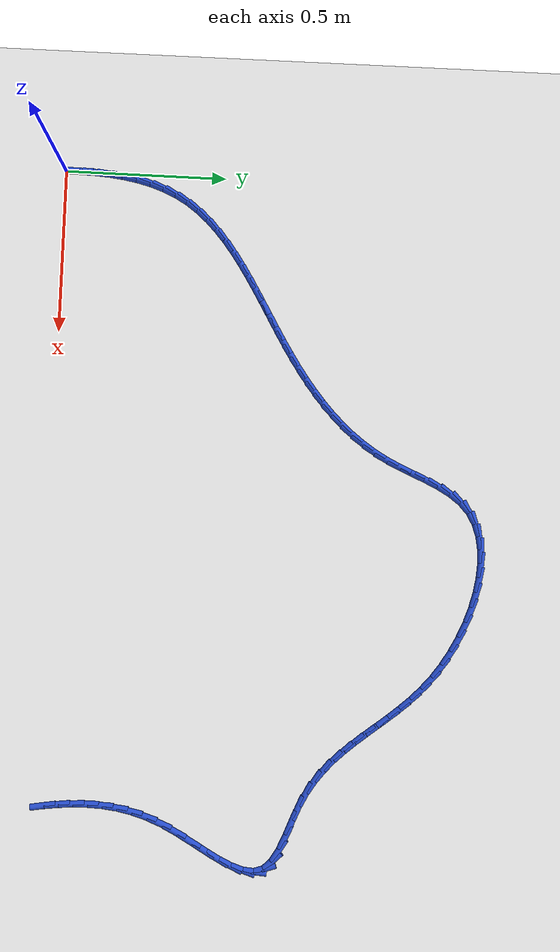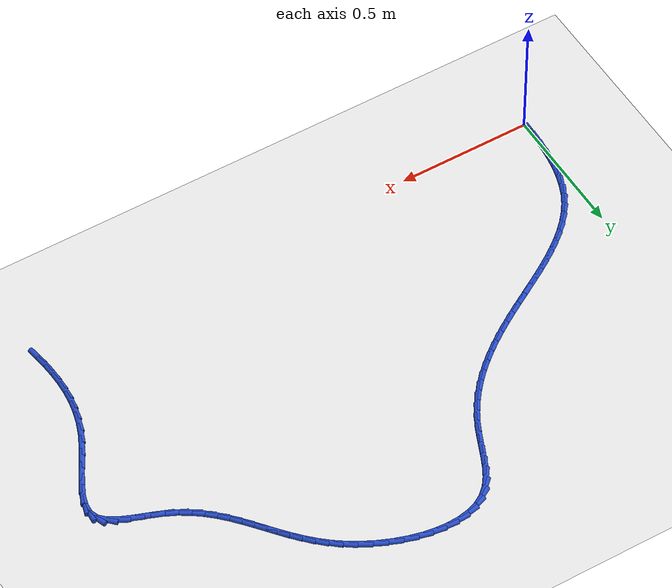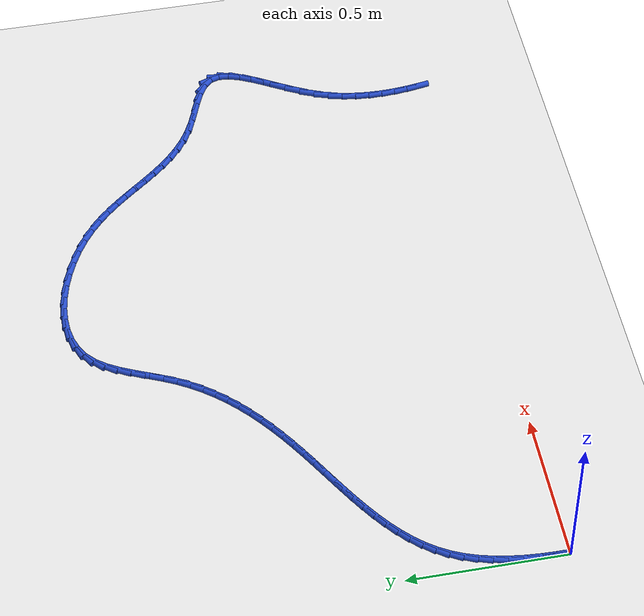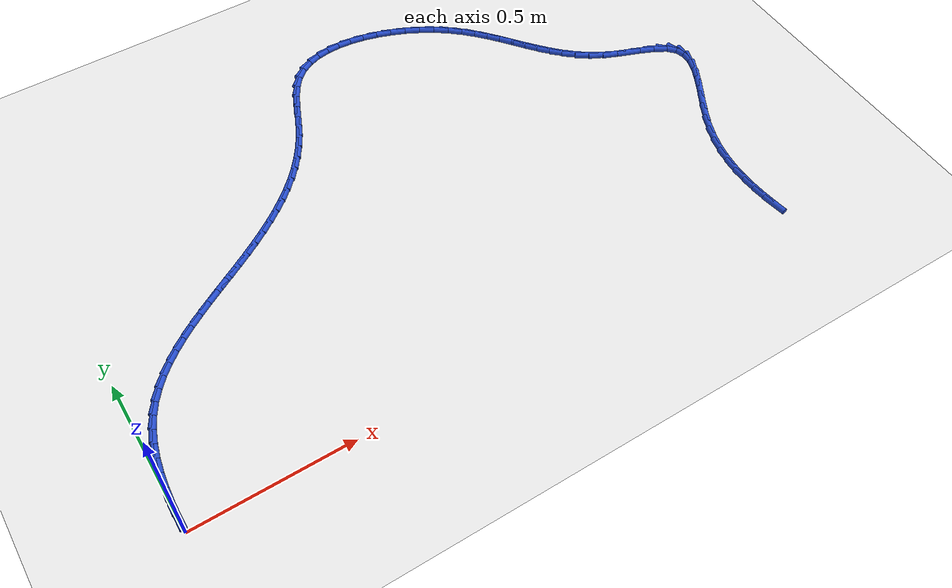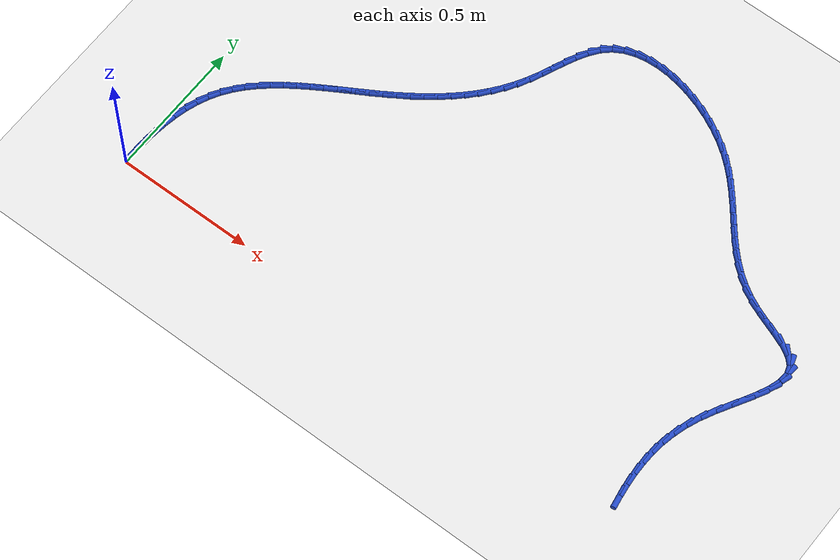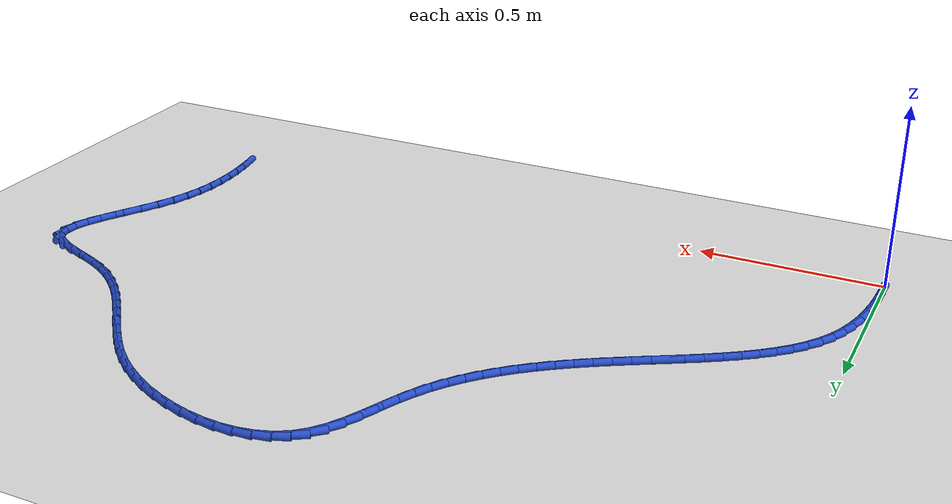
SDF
<sdf version="1.6">
 <world name="default">
  <model name="ground_plane">
   <static>1</static>
   <link name="link">
    <collision name="collision">
     <geometry><plane><normal>0 0 1</normal><size>100 100</size></plane></geometry>
     <surface><friction><ode><mu>100</mu><mu2>50</mu2></ode></friction></surface>
    </collision>
    <visual name="visual">
     <cast_shadows>0</cast_shadows>
     <geometry><plane><normal>0 0 1</normal><size>100 100</size></plane></geometry>
     <material>
      <script><uri>file://media/materials/scripts/gazebo.material</uri><name>Gazebo/WhiteGlow</name></script>
     </material>
    </visual>
   </link>
  </model>
  <model name="line">
   <link name="link_1">
    <pose>-5.461354444209526e-05 0.04609418921178743 0.01 0 1.57 1.5378651562185328</pose>
    <collision name="collision">
     <geometry><cylinder><radius>0.01</radius><length>0.08</length></cylinder></geometry>
    </collision>
    <visual name="visual">
     <material>
      <script><name>Gazebo/Blue</name><uri>file://media/materials/scripts/gazebo.material</uri></script>
     </material>
     <geometry><cylinder><radius>0.01</radius><length>0.08</length></cylinder></geometry>
    </visual>
   </link>
   <link name="link_2">
    <pose>0.001460553691353006 0.09208767975349447 0.01 0 1.57 1.496667337225599</pose>
    <collision name="collision">
     <geometry><cylinder><radius>0.01</radius><length>0.08</length></cylinder></geometry>
    </collision>
    <visual name="visual">
     <material>
      <script><name>Gazebo/Blue</name><uri>file://media/materials/scripts/gazebo.material</uri></script>
     </material>
     <geometry><cylinder><radius>0.01</radius><length>0.08</length></cylinder></geometry>
    </visual>
   </link>
   <link name="link_3">
    <pose>0.004844474672389647 0.13765312442916 0.01 0 1.57 1.4475315382193203</pose>
    <collision name="collision">
     <geometry><cylinder><radius>0.01</radius><length>0.08</length></cylinder></geometry>
    </collision>
    <visual name="visual">
     <material>
      <script><name>Gazebo/Blue</name><uri>file://media/materials/scripts/gazebo.material</uri></script>
     </material>
     <geometry><cylinder><radius>0.01</radius><length>0.08</length></cylinder></geometry>
    </visual>
   </link>
   <link name="link_4">
    <pose>0.010396122363672163 0.1824631760428229 0.01 0 1.57 1.3894395232690393</pose>
    <collision name="collision">
     <geometry><cylinder><radius>0.01</radius><length>0.08</length></cylinder></geometry>
    </collision>
    <visual name="visual">
     <material>
      <script><name>Gazebo/Blue</name><uri>file://media/materials/scripts/gazebo.material</uri></script>
     </material>
     <geometry><cylinder><radius>0.01</radius><length>0.08</length></cylinder></geometry>
    </visual>
   </link>
   <link name="link_5">
    <pose>0.018414469730204885 0.2261904873985221 0.01 0 1.57 1.3212698312868223</pose>
    <collision name="collision">
     <geometry><cylinder><radius>0.01</radius><length>0.08</length></cylinder></geometry>
    </collision>
    <visual name="visual">
     <material>
      <script><name>Gazebo/Blue</name><uri>file://media/materials/scripts/gazebo.material</uri></script>
     </material>
     <geometry><cylinder><radius>0.01</radius><length>0.08</length></cylinder></geometry>
    </visual>
   </link>
   <link name="link_6">
    <pose>0.029198489736992145 0.2685077113002964 0.01 0 1.57 1.241919839483153</pose>
    <collision name="collision">
     <geometry><cylinder><radius>0.01</radius><length>0.08</length></cylinder></geometry>
    </collision>
    <visual name="visual">
     <material>
      <script><name>Gazebo/Blue</name><uri>file://media/materials/scripts/gazebo.material</uri></script>
     </material>
     <geometry><cylinder><radius>0.01</radius><length>0.08</length></cylinder></geometry>
    </visual>
   </link>
   <link name="link_7">
    <pose>0.043047155349038274 0.3090875005521847 0.01 0 1.57 1.1505249234120345</pose>
    <collision name="collision">
     <geometry><cylinder><radius>0.01</radius><length>0.08</length></cylinder></geometry>
    </collision>
    <visual name="visual">
     <material>
      <script><name>Gazebo/Blue</name><uri>file://media/materials/scripts/gazebo.material</uri></script>
     </material>
     <geometry><cylinder><radius>0.01</radius><length>0.08</length></cylinder></geometry>
    </visual>
   </link>
   <link name="link_8">
    <pose>0.06025943953134761 0.3476025079582259 0.01 0 1.57 1.047654850337171</pose>
    <collision name="collision">
     <geometry><cylinder><radius>0.01</radius><length>0.08</length></cylinder></geometry>
    </collision>
    <visual name="visual">
     <material>
      <script><name>Gazebo/Blue</name><uri>file://media/materials/scripts/gazebo.material</uri></script>
     </material>
     <geometry><cylinder><radius>0.01</radius><length>0.08</length></cylinder></geometry>
    </visual>
   </link>
   <link name="link_9">
    <pose>0.08110669816775862 0.3837491830798641 0.01 0 1.57 0.9456619193685916</pose>
    <collision name="collision">
     <geometry><cylinder><radius>0.01</radius><length>0.08</length></cylinder></geometry>
    </collision>
    <visual name="visual">
     <material>
      <script><name>Gazebo/Blue</name><uri>file://media/materials/scripts/gazebo.material</uri></script>
     </material>
     <geometry><cylinder><radius>0.01</radius><length>0.08</length></cylinder></geometry>
    </visual>
   </link>
   <link name="link_10">
    <pose>0.10549329707692662 0.4175401991047393 0.01 0 1.57 0.8545430566858977</pose>
    <collision name="collision">
     <geometry><cylinder><radius>0.01</radius><length>0.08</length></cylinder></geometry>
    </collision>
    <visual name="visual">
     <material>
      <script><name>Gazebo/Blue</name><uri>file://media/materials/scripts/gazebo.material</uri></script>
     </material>
     <geometry><cylinder><radius>0.01</radius><length>0.08</length></cylinder></geometry>
    </visual>
   </link>
   <link name="link_11">
    <pose>0.13306302004227455 0.44921276444343244 0.01 0 1.57 0.7755130728796676</pose>
    <collision name="collision">
     <geometry><cylinder><radius>0.01</radius><length>0.08</length></cylinder></geometry>
    </collision>
    <visual name="visual">
     <material>
      <script><name>Gazebo/Blue</name><uri>file://media/materials/scripts/gazebo.material</uri></script>
     </material>
     <geometry><cylinder><radius>0.01</radius><length>0.08</length></cylinder></geometry>
    </visual>
   </link>
   <link name="link_12">
    <pose>0.16345410067431382 0.47900886991338126 0.01 0 1.57 0.7086950156455445</pose>
    <collision name="collision">
     <geometry><cylinder><radius>0.01</radius><length>0.08</length></cylinder></geometry>
    </collision>
    <visual name="visual">
     <material>
      <script><name>Gazebo/Blue</name><uri>file://media/materials/scripts/gazebo.material</uri></script>
     </material>
     <geometry><cylinder><radius>0.01</radius><length>0.08</length></cylinder></geometry>
    </visual>
   </link>
   <link name="link_13">
    <pose>0.19630477258355566 0.5071705063320233 0.01 0 1.57 0.653637642707787</pose>
    <collision name="collision">
     <geometry><cylinder><radius>0.01</radius><length>0.08</length></cylinder></geometry>
    </collision>
    <visual name="visual">
     <material>
      <script><name>Gazebo/Blue</name><uri>file://media/materials/scripts/gazebo.material</uri></script>
     </material>
     <geometry><cylinder><radius>0.01</radius><length>0.08</length></cylinder></geometry>
    </visual>
   </link>
   <link name="link_14">
    <pose>0.23125326938051127 0.533939664516796 0.01 0 1.57 0.6096179353655401</pose>
    <collision name="collision">
     <geometry><cylinder><radius>0.01</radius><length>0.08</length></cylinder></geometry>
    </collision>
    <visual name="visual">
     <material>
      <script><name>Gazebo/Blue</name><uri>file://media/materials/scripts/gazebo.material</uri></script>
     </material>
     <geometry><cylinder><radius>0.01</radius><length>0.08</length></cylinder></geometry>
    </visual>
   </link>
   <link name="link_15">
    <pose>0.26793782467569227 0.5595583352851373 0.01 0 1.57 0.5758564400715441</pose>
    <collision name="collision">
     <geometry><cylinder><radius>0.01</radius><length>0.08</length></cylinder></geometry>
    </collision>
    <visual name="visual">
     <material>
      <script><name>Gazebo/Blue</name><uri>file://media/materials/scripts/gazebo.material</uri></script>
     </material>
     <geometry><cylinder><radius>0.01</radius><length>0.08</length></cylinder></geometry>
    </visual>
   </link>
   <link name="link_16">
    <pose>0.30599667207960984 0.5842685094544845 0.01 0 1.57 0.5516502759008736</pose>
    <collision name="collision">
     <geometry><cylinder><radius>0.01</radius><length>0.08</length></cylinder></geometry>
    </collision>
    <visual name="visual">
     <material>
      <script><name>Gazebo/Blue</name><uri>file://media/materials/scripts/gazebo.material</uri></script>
     </material>
     <geometry><cylinder><radius>0.01</radius><length>0.08</length></cylinder></geometry>
    </visual>
   </link>
   <link name="link_17">
    <pose>0.3450680452027752 0.6083121778422756 0.01 0 1.57 0.536446397267386</pose>
    <collision name="collision">
     <geometry><cylinder><radius>0.01</radius><length>0.08</length></cylinder></geometry>
    </collision>
    <visual name="visual">
     <material>
      <script><name>Gazebo/Blue</name><uri>file://media/materials/scripts/gazebo.material</uri></script>
     </material>
     <geometry><cylinder><radius>0.01</radius><length>0.08</length></cylinder></geometry>
    </visual>
   </link>
   <link name="link_18">
    <pose>0.38479017765569967 0.6319313312659477 0.01 0 1.57 0.5298777556419644</pose>
    <collision name="collision">
     <geometry><cylinder><radius>0.01</radius><length>0.08</length></cylinder></geometry>
    </collision>
    <visual name="visual">
     <material>
      <script><name>Gazebo/Blue</name><uri>file://media/materials/scripts/gazebo.material</uri></script>
     </material>
     <geometry><cylinder><radius>0.01</radius><length>0.08</length></cylinder></geometry>
    </visual>
   </link>
   <link name="link_19">
    <pose>0.42480130304889463 0.6553679605429387 0.01 0 1.57 0.5317788992559888</pose>
    <collision name="collision">
     <geometry><cylinder><radius>0.01</radius><length>0.08</length></cylinder></geometry>
    </collision>
    <visual name="visual">
     <material>
      <script><name>Gazebo/Blue</name><uri>file://media/materials/scripts/gazebo.material</uri></script>
     </material>
     <geometry><cylinder><radius>0.01</radius><length>0.08</length></cylinder></geometry>
    </visual>
   </link>
   <link name="link_20">
    <pose>0.4647396549928715 0.6788640564906863 0.01 0 1.57 0.5421908264301276</pose>
    <collision name="collision">
     <geometry><cylinder><radius>0.01</radius><length>0.08</length></cylinder></geometry>
    </collision>
    <visual name="visual">
     <material>
      <script><name>Gazebo/Blue</name><uri>file://media/materials/scripts/gazebo.material</uri></script>
     </material>
     <geometry><cylinder><radius>0.01</radius><length>0.08</length></cylinder></geometry>
    </visual>
   </link>
   <link name="link_21">
    <pose>0.5042434670981417 0.7026616099266283 0.01 0 1.57 0.5609635225614444</pose>
    <collision name="collision">
     <geometry><cylinder><radius>0.01</radius><length>0.08</length></cylinder></geometry>
    </collision>
    <visual name="visual">
     <material>
      <script><name>Gazebo/Blue</name><uri>file://media/materials/scripts/gazebo.material</uri></script>
     </material>
     <geometry><cylinder><radius>0.01</radius><length>0.08</length></cylinder></geometry>
    </visual>
   </link>
   <link name="link_22">
    <pose>0.5429727379642396 0.7269949241003821 0.01 0 1.57 0.5858534026313756</pose>
    <collision name="collision">
     <geometry><cylinder><radius>0.01</radius><length>0.08</length></cylinder></geometry>
    </collision>
    <visual name="visual">
     <material>
      <script><name>Gazebo/Blue</name><uri>file://media/materials/scripts/gazebo.material</uri></script>
     </material>
     <geometry><cylinder><radius>0.01</radius><length>0.08</length></cylinder></geometry>
    </visual>
   </link>
   <link name="link_23">
    <pose>0.5807285957842947 0.7520484541628164 0.01 0 1.57 0.6160258993603437</pose>
    <collision name="collision">
     <geometry><cylinder><radius>0.01</radius><length>0.08</length></cylinder></geometry>
    </collision>
    <visual name="visual">
     <material>
      <script><name>Gazebo/Blue</name><uri>file://media/materials/scripts/gazebo.material</uri></script>
     </material>
     <geometry><cylinder><radius>0.01</radius><length>0.08</length></cylinder></geometry>
    </visual>
   </link>
   <link name="link_24">
    <pose>0.617368452465538 0.7779867754078025 0.01 0 1.57 0.6516195660069333</pose>
    <collision name="collision">
     <geometry><cylinder><radius>0.01</radius><length>0.08</length></cylinder></geometry>
    </collision>
    <visual name="visual">
     <material>
      <script><name>Gazebo/Blue</name><uri>file://media/materials/scripts/gazebo.material</uri></script>
     </material>
     <geometry><cylinder><radius>0.01</radius><length>0.08</length></cylinder></geometry>
    </visual>
   </link>
   <link name="link_25">
    <pose>0.6527498660742618 0.8049744115046663 0.01 0 1.57 0.69272663981271</pose>
    <collision name="collision">
     <geometry><cylinder><radius>0.01</radius><length>0.08</length></cylinder></geometry>
    </collision>
    <visual name="visual">
     <material>
      <script><name>Gazebo/Blue</name><uri>file://media/materials/scripts/gazebo.material</uri></script>
     </material>
     <geometry><cylinder><radius>0.01</radius><length>0.08</length></cylinder></geometry>
    </visual>
   </link>
   <link name="link_26">
    <pose>0.6867303946767578 0.8331758861227329 0.01 0 1.57 0.7393568556690804</pose>
    <collision name="collision">
     <geometry><cylinder><radius>0.01</radius><length>0.08</length></cylinder></geometry>
    </collision>
    <visual name="visual">
     <material>
      <script><name>Gazebo/Blue</name><uri>file://media/materials/scripts/gazebo.material</uri></script>
     </material>
     <geometry><cylinder><radius>0.01</radius><length>0.08</length></cylinder></geometry>
    </visual>
   </link>
   <link name="link_27">
    <pose>0.7191675963393177 0.8627557229313279 0.01 0 1.57 0.7913988177955018</pose>
    <collision name="collision">
     <geometry><cylinder><radius>0.01</radius><length>0.08</length></cylinder></geometry>
    </collision>
    <visual name="visual">
     <material>
      <script><name>Gazebo/Blue</name><uri>file://media/materials/scripts/gazebo.material</uri></script>
     </material>
     <geometry><cylinder><radius>0.01</radius><length>0.08</length></cylinder></geometry>
    </visual>
   </link>
   <link name="link_28">
    <pose>0.7499190291282343 0.8938784455997767 0.01 0 1.57 0.8485803193854166</pose>
    <collision name="collision">
     <geometry><cylinder><radius>0.01</radius><length>0.08</length></cylinder></geometry>
    </collision>
    <visual name="visual">
     <material>
      <script><name>Gazebo/Blue</name><uri>file://media/materials/scripts/gazebo.material</uri></script>
     </material>
     <geometry><cylinder><radius>0.01</radius><length>0.08</length></cylinder></geometry>
    </visual>
   </link>
   <link name="link_29">
    <pose>0.7788422511097985 0.9267085777974045 0.01 0 1.57 0.9104344827017881</pose>
    <collision name="collision">
     <geometry><cylinder><radius>0.01</radius><length>0.08</length></cylinder></geometry>
    </collision>
    <visual name="visual">
     <material>
      <script><name>Gazebo/Blue</name><uri>file://media/materials/scripts/gazebo.material</uri></script>
     </material>
     <geometry><cylinder><radius>0.01</radius><length>0.08</length></cylinder></geometry>
    </visual>
   </link>
   <link name="link_30">
    <pose>0.805794820350303 0.9614106431935366 0.01 0 1.57 0.9762809017210619</pose>
    <collision name="collision">
     <geometry><cylinder><radius>0.01</radius><length>0.08</length></cylinder></geometry>
    </collision>
    <visual name="visual">
     <material>
      <script><name>Gazebo/Blue</name><uri>file://media/materials/scripts/gazebo.material</uri></script>
     </material>
     <geometry><cylinder><radius>0.01</radius><length>0.08</length></cylinder></geometry>
    </visual>
   </link>
   <link name="link_31">
    <pose>0.8306342949160396 0.9981491654574988 0.01 0 1.57 1.045231243875748</pose>
    <collision name="collision">
     <geometry><cylinder><radius>0.01</radius><length>0.08</length></cylinder></geometry>
    </collision>
    <visual name="visual">
     <material>
      <script><name>Gazebo/Blue</name><uri>file://media/materials/scripts/gazebo.material</uri></script>
     </material>
     <geometry><cylinder><radius>0.01</radius><length>0.08</length></cylinder></geometry>
    </visual>
   </link>
   <link name="link_32">
    <pose>0.8532182328733002 1.0370886682586165 0.01 0 1.57 1.1138030286405831</pose>
    <collision name="collision">
     <geometry><cylinder><radius>0.01</radius><length>0.08</length></cylinder></geometry>
    </collision>
    <visual name="visual">
     <material>
      <script><name>Gazebo/Blue</name><uri>file://media/materials/scripts/gazebo.material</uri></script>
     </material>
     <geometry><cylinder><radius>0.01</radius><length>0.08</length></cylinder></geometry>
    </visual>
   </link>
   <link name="link_33">
    <pose>0.8734820525060996 1.078299620335481 0.01 0 1.57 1.1571150702648454</pose>
    <collision name="collision">
     <geometry><cylinder><radius>0.01</radius><length>0.08</length></cylinder></geometry>
    </collision>
    <visual name="visual">
     <material>
      <script><name>Gazebo/Blue</name><uri>file://media/materials/scripts/gazebo.material</uri></script>
     </material>
     <geometry><cylinder><radius>0.01</radius><length>0.08</length></cylinder></geometry>
    </visual>
   </link>
   <link name="link_34">
    <pose>0.8921722653160781 1.1208726920311354 0.01 0 1.57 1.1628281830712808</pose>
    <collision name="collision">
     <geometry><cylinder><radius>0.01</radius><length>0.08</length></cylinder></geometry>
    </collision>
    <visual name="visual">
     <material>
      <script><name>Gazebo/Blue</name><uri>file://media/materials/scripts/gazebo.material</uri></script>
     </material>
     <geometry><cylinder><radius>0.01</radius><length>0.08</length></cylinder></geometry>
    </visual>
   </link>
   <link name="link_35">
    <pose>0.9105172241950978 1.1633164906029123 0.01 0 1.57 1.1304093988465822</pose>
    <collision name="collision">
     <geometry><cylinder><radius>0.01</radius><length>0.08</length></cylinder></geometry>
    </collision>
    <visual name="visual">
     <material>
      <script><name>Gazebo/Blue</name><uri>file://media/materials/scripts/gazebo.material</uri></script>
     </material>
     <geometry><cylinder><radius>0.01</radius><length>0.08</length></cylinder></geometry>
    </visual>
   </link>
   <link name="link_36">
    <pose>0.92975164044362 1.2041319423678944 0.01 0 1.57 1.0552064715295566</pose>
    <collision name="collision">
     <geometry><cylinder><radius>0.01</radius><length>0.08</length></cylinder></geometry>
    </collision>
    <visual name="visual">
     <material>
      <script><name>Gazebo/Blue</name><uri>file://media/materials/scripts/gazebo.material</uri></script>
     </material>
     <geometry><cylinder><radius>0.01</radius><length>0.08</length></cylinder></geometry>
    </visual>
   </link>
   <link name="link_37">
    <pose>0.951110225362104 1.2418199736431639 0.01 0 1.57 0.9288201876240286</pose>
    <collision name="collision">
     <geometry><cylinder><radius>0.01</radius><length>0.08</length></cylinder></geometry>
    </collision>
    <visual name="visual">
     <material>
      <script><name>Gazebo/Blue</name><uri>file://media/materials/scripts/gazebo.material</uri></script>
     </material>
     <geometry><cylinder><radius>0.01</radius><length>0.08</length></cylinder></geometry>
    </visual>
   </link>
   <link name="link_38">
    <pose>0.9758276902510103 1.2748815107458031 0.01 0 1.57 0.7437885615825935</pose>
    <collision name="collision">
     <geometry><cylinder><radius>0.01</radius><length>0.08</length></cylinder></geometry>
    </collision>
    <visual name="visual">
     <material>
      <script><name>Gazebo/Blue</name><uri>file://media/materials/scripts/gazebo.material</uri></script>
     </material>
     <geometry><cylinder><radius>0.01</radius><length>0.08</length></cylinder></geometry>
    </visual>
   </link>
   <link name="link_39">
    <pose>1.005121657326347 1.3018337441971113 0.01 0 1.57 0.5305552201940364</pose>
    <collision name="collision">
     <geometry><cylinder><radius>0.01</radius><length>0.08</length></cylinder></geometry>
    </collision>
    <visual name="visual">
     <material>
      <script><name>Gazebo/Blue</name><uri>file://media/materials/scripts/gazebo.material</uri></script>
     </material>
     <geometry><cylinder><radius>0.01</radius><length>0.08</length></cylinder></geometry>
    </visual>
   </link>
   <link name="link_40">
    <pose>1.0394136147600852 1.3219515696320194 0.01 0 1.57 0.3393083787846759</pose>
    <collision name="collision">
     <geometry><cylinder><radius>0.01</radius><length>0.08</length></cylinder></geometry>
    </collision>
    <visual name="visual">
     <material>
      <script><name>Gazebo/Blue</name><uri>file://media/materials/scripts/gazebo.material</uri></script>
     </material>
     <geometry><cylinder><radius>0.01</radius><length>0.08</length></cylinder></geometry>
    </visual>
   </link>
   <link name="link_41">
    <pose>1.0780073963664025 1.335573588513033 0.01 0 1.57 0.17725714844688686</pose>
    <collision name="collision">
     <geometry><cylinder><radius>0.01</radius><length>0.08</length></cylinder></geometry>
    </collision>
    <visual name="visual">
     <material>
      <script><name>Gazebo/Blue</name><uri>file://media/materials/scripts/gazebo.material</uri></script>
     </material>
     <geometry><cylinder><radius>0.01</radius><length>0.08</length></cylinder></geometry>
    </visual>
   </link>
   <link name="link_42">
    <pose>1.1201231142382877 1.3431180828247264 0.01 0 1.57 0.04200260265851956</pose>
    <collision name="collision">
     <geometry><cylinder><radius>0.01</radius><length>0.08</length></cylinder></geometry>
    </collision>
    <visual name="visual">
     <material>
      <script><name>Gazebo/Blue</name><uri>file://media/materials/scripts/gazebo.material</uri></script>
     </material>
     <geometry><cylinder><radius>0.01</radius><length>0.08</length></cylinder></geometry>
    </visual>
   </link>
   <link name="link_43">
    <pose>1.1649808804687278 1.3450033345516759 0.01 0 1.57 -0.07155031408301973</pose>
    <collision name="collision">
     <geometry><cylinder><radius>0.01</radius><length>0.08</length></cylinder></geometry>
    </collision>
    <visual name="visual">
     <material>
      <script><name>Gazebo/Blue</name><uri>file://media/materials/scripts/gazebo.material</uri></script>
     </material>
     <geometry><cylinder><radius>0.01</radius><length>0.08</length></cylinder></geometry>
    </visual>
   </link>
   <link name="link_44">
    <pose>1.2118008071507123 1.3416476256784562 0.01 0 1.57 -0.16875486050029517</pose>
    <collision name="collision">
     <geometry><cylinder><radius>0.01</radius><length>0.08</length></cylinder></geometry>
    </collision>
    <visual name="visual">
     <material>
      <script><name>Gazebo/Blue</name><uri>file://media/materials/scripts/gazebo.material</uri></script>
     </material>
     <geometry><cylinder><radius>0.01</radius><length>0.08</length></cylinder></geometry>
    </visual>
   </link>
   <link name="link_45">
    <pose>1.2598030063772294 1.3334692381896442 0.01 0 1.57 -0.25432146671569417</pose>
    <collision name="collision">
     <geometry><cylinder><radius>0.01</radius><length>0.08</length></cylinder></geometry>
    </collision>
    <visual name="visual">
     <material>
      <script><name>Gazebo/Blue</name><uri>file://media/materials/scripts/gazebo.material</uri></script>
     </material>
     <geometry><cylinder><radius>0.01</radius><length>0.08</length></cylinder></geometry>
    </visual>
   </link>
   <link name="link_46">
    <pose>1.308207590241266 1.3208864540698144 0.01 0 1.57 -0.33220528853665615</pose>
    <collision name="collision">
     <geometry><cylinder><radius>0.01</radius><length>0.08</length></cylinder></geometry>
    </collision>
    <visual name="visual">
     <material>
      <script><name>Gazebo/Blue</name><uri>file://media/materials/scripts/gazebo.material</uri></script>
     </material>
     <geometry><cylinder><radius>0.01</radius><length>0.08</length></cylinder></geometry>
    </visual>
   </link>
   <link name="link_47">
    <pose>1.356234670835812 1.3043175553035422 0.01 0 1.57 -0.40578767669279425</pose>
    <collision name="collision">
     <geometry><cylinder><radius>0.01</radius><length>0.08</length></cylinder></geometry>
    </collision>
    <visual name="visual">
     <material>
      <script><name>Gazebo/Blue</name><uri>file://media/materials/scripts/gazebo.material</uri></script>
     </material>
     <geometry><cylinder><radius>0.01</radius><length>0.08</length></cylinder></geometry>
    </visual>
   </link>
   <link name="link_48">
    <pose>1.4031043602538542 1.2841808238754042 0.01 0 1.57 -0.4781418470452831</pose>
    <collision name="collision">
     <geometry><cylinder><radius>0.01</radius><length>0.08</length></cylinder></geometry>
    </collision>
    <visual name="visual">
     <material>
      <script><name>Gazebo/Blue</name><uri>file://media/materials/scripts/gazebo.material</uri></script>
     </material>
     <geometry><cylinder><radius>0.01</radius><length>0.08</length></cylinder></geometry>
    </visual>
   </link>
   <link name="link_49">
    <pose>1.4480367705883816 1.2608945417699748 0.01 0 1.57 -0.5523237469019905</pose>
    <collision name="collision">
     <geometry><cylinder><radius>0.01</radius><length>0.08</length></cylinder></geometry>
    </collision>
    <visual name="visual">
     <material>
      <script><name>Gazebo/Blue</name><uri>file://media/materials/scripts/gazebo.material</uri></script>
     </material>
     <geometry><cylinder><radius>0.01</radius><length>0.08</length></cylinder></geometry>
    </visual>
   </link>
   <link name="link_50">
    <pose>1.4902520139323825 1.2348769909718302 0.01 0 1.57 -0.6314818254677969</pose>
    <collision name="collision">
     <geometry><cylinder><radius>0.01</radius><length>0.08</length></cylinder></geometry>
    </collision>
    <visual name="visual">
     <material>
      <script><name>Gazebo/Blue</name><uri>file://media/materials/scripts/gazebo.material</uri></script>
     </material>
     <geometry><cylinder><radius>0.01</radius><length>0.08</length></cylinder></geometry>
    </visual>
   </link>
   <link name="link_51">
    <pose>1.5289875393612393 1.2065463404608834 0.01 0 1.57 -0.7108495834030777</pose>
    <collision name="collision">
     <geometry><cylinder><radius>0.01</radius><length>0.08</length></cylinder></geometry>
    </collision>
    <visual name="visual">
     <material>
      <script><name>Gazebo/Blue</name><uri>file://media/materials/scripts/gazebo.material</uri></script>
     </material>
     <geometry><cylinder><radius>0.01</radius><length>0.08</length></cylinder></geometry>
    </visual>
   </link>
   <link name="link_52">
    <pose>1.564097124812674 1.1763167419069183 0.01 0 1.57 -0.7793377984106841</pose>
    <collision name="collision">
     <geometry><cylinder><radius>0.01</radius><length>0.08</length></cylinder></geometry>
    </collision>
    <visual name="visual">
     <material>
      <script><name>Gazebo/Blue</name><uri>file://media/materials/scripts/gazebo.material</uri></script>
     </material>
     <geometry><cylinder><radius>0.01</radius><length>0.08</length></cylinder></geometry>
    </visual>
   </link>
   <link name="link_53">
    <pose>1.5962033421453654 1.144597335882893 0.01 0 1.57 -0.8337298446864628</pose>
    <collision name="collision">
     <geometry><cylinder><radius>0.01</radius><length>0.08</length></cylinder></geometry>
    </collision>
    <visual name="visual">
     <material>
      <script><name>Gazebo/Blue</name><uri>file://media/materials/scripts/gazebo.material</uri></script>
     </material>
     <geometry><cylinder><radius>0.01</radius><length>0.08</length></cylinder></geometry>
    </visual>
   </link>
   <link name="link_54">
    <pose>1.6259770610161821 1.1117969481505565 0.01 0 1.57 -0.8722214014372216</pose>
    <collision name="collision">
     <geometry><cylinder><radius>0.01</radius><length>0.08</length></cylinder></geometry>
    </collision>
    <visual name="visual">
     <material>
      <script><name>Gazebo/Blue</name><uri>file://media/materials/scripts/gazebo.material</uri></script>
     </material>
     <geometry><cylinder><radius>0.01</radius><length>0.08</length></cylinder></geometry>
    </visual>
   </link>
   <link name="link_55">
    <pose>1.6540891510819917 1.0783244044716571 0.01 0 1.57 -0.8936627354179378</pose>
    <collision name="collision">
     <geometry><cylinder><radius>0.01</radius><length>0.08</length></cylinder></geometry>
    </collision>
    <visual name="visual">
     <material>
      <script><name>Gazebo/Blue</name><uri>file://media/materials/scripts/gazebo.material</uri></script>
     </material>
     <geometry><cylinder><radius>0.01</radius><length>0.08</length></cylinder></geometry>
    </visual>
   </link>
   <link name="link_56">
    <pose>1.6812104819996632 1.044588530607946 0.01 0 1.57 -0.897343031162592</pose>
    <collision name="collision">
     <geometry><cylinder><radius>0.01</radius><length>0.08</length></cylinder></geometry>
    </collision>
    <visual name="visual">
     <material>
      <script><name>Gazebo/Blue</name><uri>file://media/materials/scripts/gazebo.material</uri></script>
     </material>
     <geometry><cylinder><radius>0.01</radius><length>0.08</length></cylinder></geometry>
    </visual>
   </link>
   <link name="link_57">
    <pose>1.7080119234260651 1.0109981523211715 0.01 0 1.57 -0.8828420824173352</pose>
    <collision name="collision">
     <geometry><cylinder><radius>0.01</radius><length>0.08</length></cylinder></geometry>
    </collision>
    <visual name="visual">
     <material>
      <script><name>Gazebo/Blue</name><uri>file://media/materials/scripts/gazebo.material</uri></script>
     </material>
     <geometry><cylinder><radius>0.01</radius><length>0.08</length></cylinder></geometry>
    </visual>
   </link>
   <link name="link_58">
    <pose>1.735164345018065 0.9779620953730824 0.01 0 1.57 -0.8500187840394143</pose>
    <collision name="collision">
     <geometry><cylinder><radius>0.01</radius><length>0.08</length></cylinder></geometry>
    </collision>
    <visual name="visual">
     <material>
      <script><name>Gazebo/Blue</name><uri>file://media/materials/scripts/gazebo.material</uri></script>
     </material>
     <geometry><cylinder><radius>0.01</radius><length>0.08</length></cylinder></geometry>
    </visual>
   </link>
   <link name="link_59">
    <pose>1.763338616432532 0.9458891855254293 0.01 0 1.57 -0.7991660670928029</pose>
    <collision name="collision">
     <geometry><cylinder><radius>0.01</radius><length>0.08</length></cylinder></geometry>
    </collision>
    <visual name="visual">
     <material>
      <script><name>Gazebo/Blue</name><uri>file://media/materials/scripts/gazebo.material</uri></script>
     </material>
     <geometry><cylinder><radius>0.01</radius><length>0.08</length></cylinder></geometry>
    </visual>
   </link>
   <link name="link_60">
    <pose>1.793205607326334 0.9151882485399607 0.01 0 1.57 -0.7313151782882586</pose>
    <collision name="collision">
     <geometry><cylinder><radius>0.01</radius><length>0.08</length></cylinder></geometry>
    </collision>
    <visual name="visual">
     <material>
      <script><name>Gazebo/Blue</name><uri>file://media/materials/scripts/gazebo.material</uri></script>
     </material>
     <geometry><cylinder><radius>0.01</radius><length>0.08</length></cylinder></geometry>
    </visual>
   </link>
   <link name="link_61">
    <pose>1.8254361873563405 0.8862681101784261 0.01 0 1.57 -0.6485945372411348</pose>
    <collision name="collision">
     <geometry><cylinder><radius>0.01</radius><length>0.08</length></cylinder></geometry>
    </collision>
    <visual name="visual">
     <material>
      <script><name>Gazebo/Blue</name><uri>file://media/materials/scripts/gazebo.material</uri></script>
     </material>
     <geometry><cylinder><radius>0.01</radius><length>0.08</length></cylinder></geometry>
    </visual>
   </link>
   <link name="link_62">
    <pose>1.860701226179418 0.8595375962025746 0.01 0 1.57 -0.5544475603398086</pose>
    <collision name="collision">
     <geometry><cylinder><radius>0.01</radius><length>0.08</length></cylinder></geometry>
    </collision>
    <visual name="visual">
     <material>
      <script><name>Gazebo/Blue</name><uri>file://media/materials/scripts/gazebo.material</uri></script>
     </material>
     <geometry><cylinder><radius>0.01</radius><length>0.08</length></cylinder></geometry>
    </visual>
   </link>
   <link name="link_63">
    <pose>1.8996715934524364 0.8354055323741557 0.01 0 1.57 -0.45410261676943225</pose>
    <collision name="collision">
     <geometry><cylinder><radius>0.01</radius><length>0.08</length></cylinder></geometry>
    </collision>
    <visual name="visual">
     <material>
      <script><name>Gazebo/Blue</name><uri>file://media/materials/scripts/gazebo.material</uri></script>
     </material>
     <geometry><cylinder><radius>0.01</radius><length>0.08</length></cylinder></geometry>
    </visual>
   </link>
   <link name="link_64">
    <pose>1.9429829982231206 0.8142641497965635 0.01 0 1.57 -0.3791846506475868</pose>
    <collision name="collision">
     <geometry><cylinder><radius>0.01</radius><length>0.08</length></cylinder></geometry>
    </collision>
    <visual name="visual">
     <material>
      <script><name>Gazebo/Blue</name><uri>file://media/materials/scripts/gazebo.material</uri></script>
     </material>
     <geometry><cylinder><radius>0.01</radius><length>0.08</length></cylinder></geometry>
    </visual>
   </link>
   <link name="link_65">
    <pose>1.98956764038835 0.7957016789300416 0.01 0 1.57 -0.3617420133453219</pose>
    <collision name="collision">
     <geometry><cylinder><radius>0.01</radius><length>0.08</length></cylinder></geometry>
    </collision>
    <visual name="visual">
     <material>
      <script><name>Gazebo/Blue</name><uri>file://media/materials/scripts/gazebo.material</uri></script>
     </material>
     <geometry><cylinder><radius>0.01</radius><length>0.08</length></cylinder></geometry>
    </visual>
   </link>
   <link name="link_66">
    <pose>2.0359275795647616 0.7781594034472076 0.01 0 1.57 -0.4044022111047707</pose>
    <collision name="collision">
     <geometry><cylinder><radius>0.01</radius><length>0.08</length></cylinder></geometry>
    </collision>
    <visual name="visual">
     <material>
      <script><name>Gazebo/Blue</name><uri>file://media/materials/scripts/gazebo.material</uri></script>
     </material>
     <geometry><cylinder><radius>0.01</radius><length>0.08</length></cylinder></geometry>
    </visual>
   </link>
   <link name="link_67">
    <pose>2.078378614364323 0.7599906979140717 0.01 0 1.57 -0.5303823493370992</pose>
    <collision name="collision">
     <geometry><cylinder><radius>0.01</radius><length>0.08</length></cylinder></geometry>
    </collision>
    <visual name="visual">
     <material>
      <script><name>Gazebo/Blue</name><uri>file://media/materials/scripts/gazebo.material</uri></script>
     </material>
     <geometry><cylinder><radius>0.01</radius><length>0.08</length></cylinder></geometry>
    </visual>
   </link>
   <link name="link_68">
    <pose>2.1132365433989984 0.7395489368966425 0.01 0 1.57 -0.801683466181444</pose>
    <collision name="collision">
     <geometry><cylinder><radius>0.01</radius><length>0.08</length></cylinder></geometry>
    </collision>
    <visual name="visual">
     <material>
      <script><name>Gazebo/Blue</name><uri>file://media/materials/scripts/gazebo.material</uri></script>
     </material>
     <geometry><cylinder><radius>0.01</radius><length>0.08</length></cylinder></geometry>
    </visual>
   </link>
   <link name="link_69">
    <pose>2.1368171652807546 0.7151874949609303 0.01 0 1.57 -1.2546153297272837</pose>
    <collision name="collision">
     <geometry><cylinder><radius>0.01</radius><length>0.08</length></cylinder></geometry>
    </collision>
    <visual name="visual">
     <material>
      <script><name>Gazebo/Blue</name><uri>file://media/materials/scripts/gazebo.material</uri></script>
     </material>
     <geometry><cylinder><radius>0.01</radius><length>0.08</length></cylinder></geometry>
    </visual>
   </link>
   <link name="link_70">
    <pose>2.1464769208990937 0.6856610746130942 0.01 0 1.57 1.491147452122521</pose>
    <collision name="collision">
     <geometry><cylinder><radius>0.01</radius><length>0.08</length></cylinder></geometry>
    </collision>
    <visual name="visual">
     <material>
      <script><name>Gazebo/Blue</name><uri>file://media/materials/scripts/gazebo.material</uri></script>
     </material>
     <geometry><cylinder><radius>0.01</radius><length>0.08</length></cylinder></geometry>
    </visual>
   </link>
   <link name="link_71">
    <pose>2.1437367263078873 0.6513304251974817 0.01 0 1.57 1.2540540255600008</pose>
    <collision name="collision">
     <geometry><cylinder><radius>0.01</radius><length>0.08</length></cylinder></geometry>
    </collision>
    <visual name="visual">
     <material>
      <script><name>Gazebo/Blue</name><uri>file://media/materials/scripts/gazebo.material</uri></script>
     </material>
     <geometry><cylinder><radius>0.01</radius><length>0.08</length></cylinder></geometry>
    </visual>
   </link>
   <link name="link_72">
    <pose>2.131159093083825 0.6129579916215243 0.01 0 1.57 1.1260174141696433</pose>
    <collision name="collision">
     <geometry><cylinder><radius>0.01</radius><length>0.08</length></cylinder></geometry>
    </collision>
    <visual name="visual">
     <material>
      <script><name>Gazebo/Blue</name><uri>file://media/materials/scripts/gazebo.material</uri></script>
     </material>
     <geometry><cylinder><radius>0.01</radius><length>0.08</length></cylinder></geometry>
    </visual>
   </link>
   <link name="link_73">
    <pose>2.111306532803601 0.5713062187926536 0.01 0 1.57 1.0632338092376994</pose>
    <collision name="collision">
     <geometry><cylinder><radius>0.01</radius><length>0.08</length></cylinder></geometry>
    </collision>
    <visual name="visual">
     <material>
      <script><name>Gazebo/Blue</name><uri>file://media/materials/scripts/gazebo.material</uri></script>
     </material>
     <geometry><cylinder><radius>0.01</radius><length>0.08</length></cylinder></geometry>
    </visual>
   </link>
   <link name="link_74">
    <pose>2.086741557043911 0.5271375516183018 0.01 0 1.57 1.0439185752745281</pose>
    <collision name="collision">
     <geometry><cylinder><radius>0.01</radius><length>0.08</length></cylinder></geometry>
    </collision>
    <visual name="visual">
     <material>
      <script><name>Gazebo/Blue</name><uri>file://media/materials/scripts/gazebo.material</uri></script>
     </material>
     <geometry><cylinder><radius>0.01</radius><length>0.08</length></cylinder></geometry>
    </visual>
   </link>
   <link name="link_75">
    <pose>2.0600266773814484 0.4812144350059019 0.01 0 1.57 1.0598245197717318</pose>
    <collision name="collision">
     <geometry><cylinder><radius>0.01</radius><length>0.08</length></cylinder></geometry>
    </collision>
    <visual name="visual">
     <material>
      <script><name>Gazebo/Blue</name><uri>file://media/materials/scripts/gazebo.material</uri></script>
     </material>
     <geometry><cylinder><radius>0.01</radius><length>0.08</length></cylinder></geometry>
    </visual>
   </link>
   <link name="link_76">
    <pose>2.0337244053929084 0.43429931386288584 0.01 0 1.57 1.1113176009299257</pose>
    <collision name="collision">
     <geometry><cylinder><radius>0.01</radius><length>0.08</length></cylinder></geometry>
    </collision>
    <visual name="visual">
     <material>
      <script><name>Gazebo/Blue</name><uri>file://media/materials/scripts/gazebo.material</uri></script>
     </material>
     <geometry><cylinder><radius>0.01</radius><length>0.08</length></cylinder></geometry>
    </visual>
   </link>
   <link name="link_77">
    <pose>2.010397228089628 0.38715462675762835 0.01 0 1.57 1.196697423971809</pose>
    <collision name="collision">
     <geometry><cylinder><radius>0.01</radius><length>0.08</length></cylinder></geometry>
    </collision>
    <visual name="visual">
     <material>
      <script><name>Gazebo/Blue</name><uri>file://media/materials/scripts/gazebo.material</uri></script>
     </material>
     <geometry><cylinder><radius>0.01</radius><length>0.08</length></cylinder></geometry>
    </visual>
   </link>
   <link name="link_78">
    <pose>1.9920406306946294 0.3403964982180622 0.01 0 1.57 1.288479458959161</pose>
    <collision name="collision">
     <geometry><cylinder><radius>0.01</radius><length>0.08</length></cylinder></geometry>
    </collision>
    <visual name="visual">
     <material>
      <script><name>Gazebo/Blue</name><uri>file://media/materials/scripts/gazebo.material</uri></script>
     </material>
     <geometry><cylinder><radius>0.01</radius><length>0.08</length></cylinder></geometry>
    </visual>
   </link>
   <link name="link_79">
    <pose>1.9786163772134926 0.29411625377749206 0.01 0 1.57 1.3771757407243477</pose>
    <collision name="collision">
     <geometry><cylinder><radius>0.01</radius><length>0.08</length></cylinder></geometry>
    </collision>
    <visual name="visual">
     <material>
      <script><name>Gazebo/Blue</name><uri>file://media/materials/scripts/gazebo.material</uri></script>
     </material>
     <geometry><cylinder><radius>0.01</radius><length>0.08</length></cylinder></geometry>
    </visual>
   </link>
   <link name="link_80">
    <pose>1.9696304338058859 0.24828760095489824 0.01 0 1.57 1.4602076360657592</pose>
    <collision name="collision">
     <geometry><cylinder><radius>0.01</radius><length>0.08</length></cylinder></geometry>
    </collision>
    <visual name="visual">
     <material>
      <script><name>Gazebo/Blue</name><uri>file://media/materials/scripts/gazebo.material</uri></script>
     </material>
     <geometry><cylinder><radius>0.01</radius><length>0.08</length></cylinder></geometry>
    </visual>
   </link>
   <link name="link_81">
    <pose>1.964588766631474 0.20288424726925963 0.01 0 1.57 1.5354494757456612</pose>
    <collision name="collision">
     <geometry><cylinder><radius>0.01</radius><length>0.08</length></cylinder></geometry>
    </collision>
    <visual name="visual">
     <material>
      <script><name>Gazebo/Blue</name><uri>file://media/materials/scripts/gazebo.material</uri></script>
     </material>
     <geometry><cylinder><radius>0.01</radius><length>0.08</length></cylinder></geometry>
    </visual>
   </link>
   <link name="link_82">
    <pose>1.9629973418499258 0.15787990023955523 0.01 0 1.57 -1.5402270078008298</pose>
    <collision name="collision">
     <geometry><cylinder><radius>0.01</radius><length>0.08</length></cylinder></geometry>
    </collision>
    <visual name="visual">
     <material>
      <script><name>Gazebo/Blue</name><uri>file://media/materials/scripts/gazebo.material</uri></script>
     </material>
     <geometry><cylinder><radius>0.01</radius><length>0.08</length></cylinder></geometry>
    </visual>
   </link>
   <link name="link_83">
    <pose>1.9643621256209078 0.11324826738476536 0.01 0 1.57 -1.4845943063501192</pose>
    <collision name="collision">
     <geometry><cylinder><radius>0.01</radius><length>0.08</length></cylinder></geometry>
    </collision>
    <visual name="visual">
     <material>
      <script><name>Gazebo/Blue</name><uri>file://media/materials/scripts/gazebo.material</uri></script>
     </material>
     <geometry><cylinder><radius>0.01</radius><length>0.08</length></cylinder></geometry>
    </visual>
   </link>
   <link name="link_84">
    <pose>1.9681890841040857 0.0689630562238685 0.01 0 1.57 -1.4397404330524048</pose>
    <collision name="collision">
     <geometry><cylinder><radius>0.01</radius><length>0.08</length></cylinder></geometry>
    </collision>
    <visual name="visual">
     <material>
      <script><name>Gazebo/Blue</name><uri>file://media/materials/scripts/gazebo.material</uri></script>
     </material>
     <geometry><cylinder><radius>0.01</radius><length>0.08</length></cylinder></geometry>
    </visual>
   </link>
   <link name="link_85">
    <pose>1.9739841834591279 0.024997974275844922 0.01 0 1.57 -1.4058556240809013</pose>
    <collision name="collision">
     <geometry><cylinder><radius>0.01</radius><length>0.08</length></cylinder></geometry>
    </collision>
    <visual name="visual">
     <material>
      <script><name>Gazebo/Blue</name><uri>file://media/materials/scripts/gazebo.material</uri></script>
     </material>
     <geometry><cylinder><radius>0.01</radius><length>0.08</length></cylinder></geometry>
    </visual>
   </link>
   <link name="link_171">
    <pose>-0.00013314678415535155 0.04612126988784896 0.01 0 1.57 -1.5679094502064017</pose>
    <collision name="collision">
     <geometry><cylinder><radius>0.01</radius><length>0.08</length></cylinder></geometry>
    </collision>
    <visual name="visual">
     <material>
      <script><name>Gazebo/Blue</name><uri>file://media/materials/scripts/gazebo.material</uri></script>
     </material>
     <geometry><cylinder><radius>0.01</radius><length>0.08</length></cylinder></geometry>
    </visual>
   </link>
  </model>
 </world>
</sdf>
